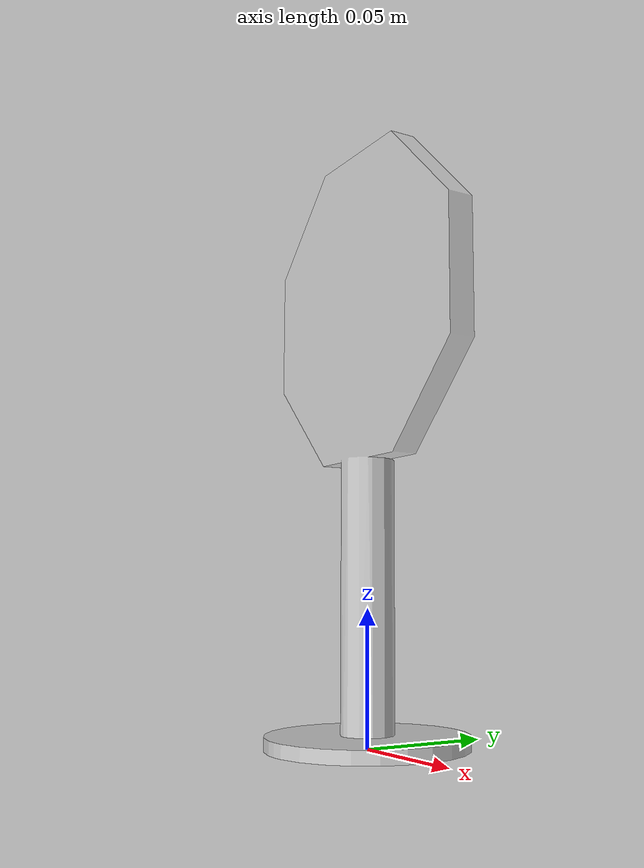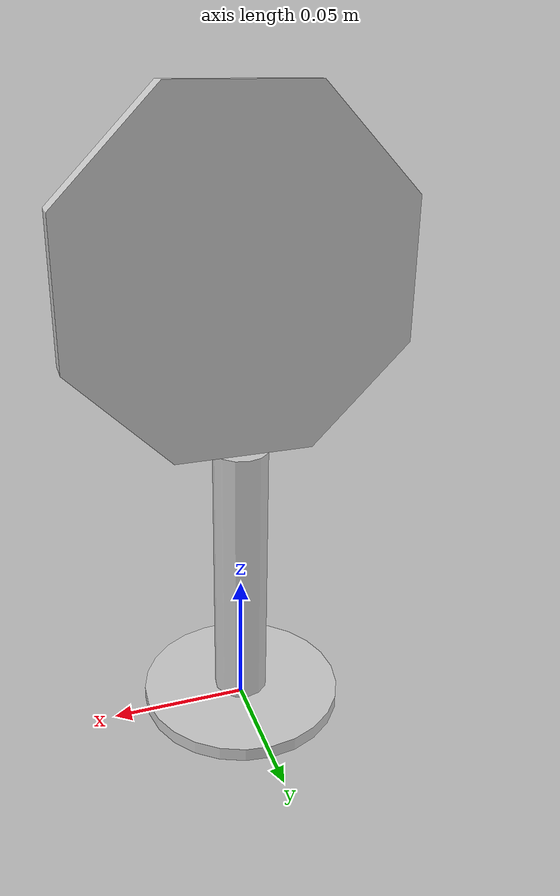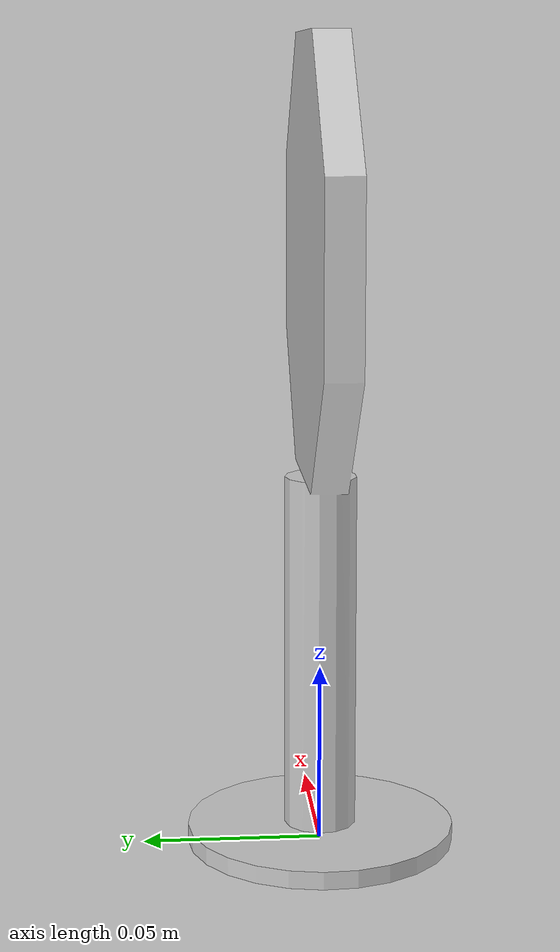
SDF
<?xml version='1.0'?>
<sdf version='1.6'>
  <model name='roscar_alto.SLDPRT'>
    <link name='roscar_alto'>
      <pose frame=''>0 0 0 0 -0 0</pose>
      <inertial>
        <pose frame=''>0 0 0.12423 0 -0 0</pose>
        <mass>0.1728</mass>
        <inertia>
          <ixx>0.00082546</ixx>
          <ixy>5.5204e-23</ixy>
          <ixz>-2.8152e-20</ixz>
          <iyy>0.00093797</iyy>
          <iyz>-5.34591e-20</iyz>
          <izz>0.0001316</izz>
        </inertia>
      </inertial>
      <collision name='roscar_alto_collision'>
        <pose frame=''>0 0 0 1.5708 -0 0</pose>
        <geometry>
          <mesh>
            <scale>1 1 1</scale>
            <uri>model://roscar_alto/meshes/roscar_alto.dae</uri>
          </mesh>
        </geometry>
      </collision>
      <visual name='roscar_alto_visual'>
        <pose frame=''>0 0 0 1.5708 -0 0</pose>
        <geometry>
          <mesh>
            <scale>1 1 1</scale>
            <uri>model://roscar_alto/meshes/roscar_alto.dae</uri>
          </mesh>
        </geometry>

				<material>
					<script>
            <uri>model://roscar_alto/materials/scripts</uri>
            <uri>model://roscar_alto/materials/textures</uri>
						<name>alto/Texture</name>
					</script>
				</material>

      </visual>
    </link>
  </model>
</sdf>
